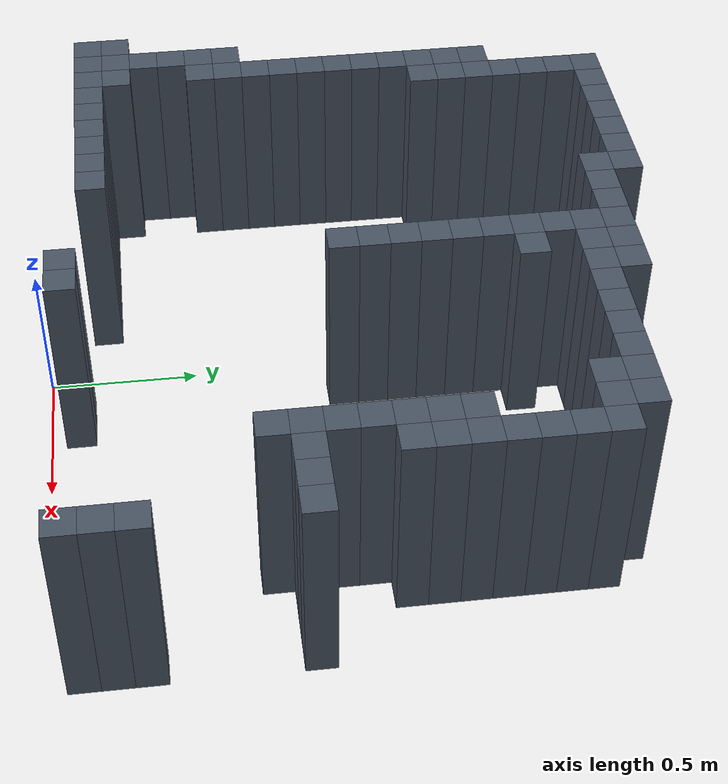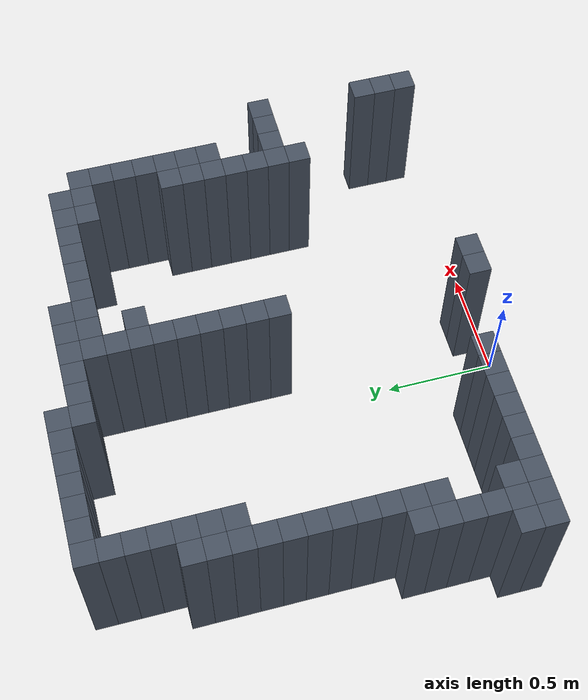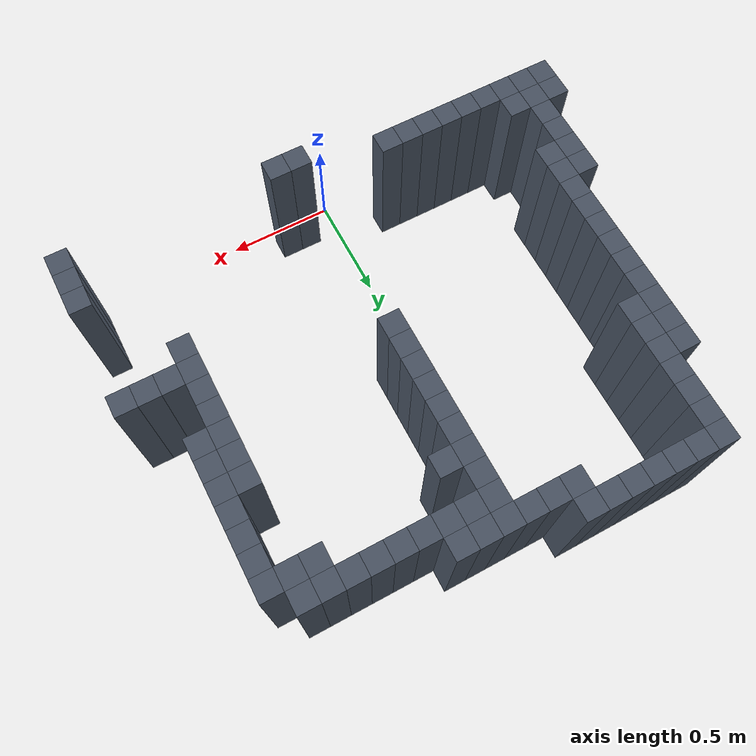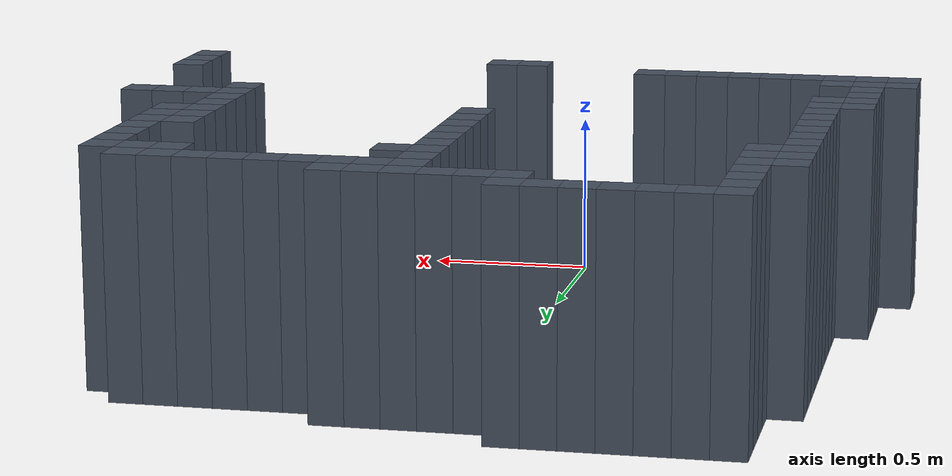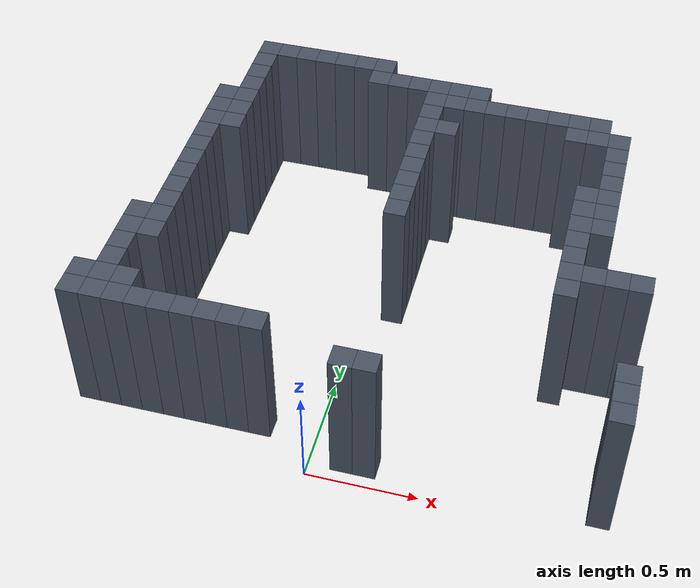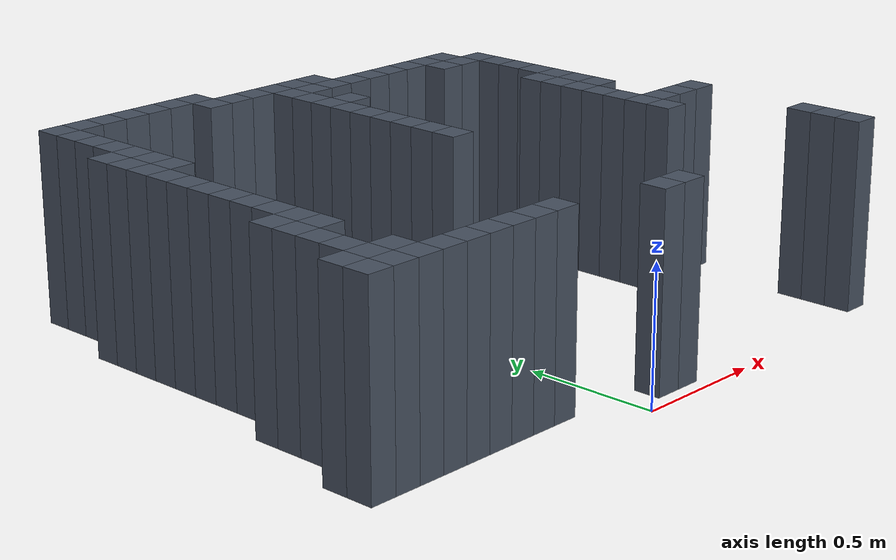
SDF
<sdf version="1.8">
 <world name="parking_passage">
  <model name="map_walls">
   <static>true</static>
   <link name="wall_0_5">
    <pose>-0.750 2.000 0.350 0 0 0</pose>
    <visual name="visual">
     <geometry><box><size>0.1 0.1 0.70</size></box></geometry>
     <material><ambient>0.22 0.25 0.30 1</ambient><diffuse>0.28 0.32 0.38 1</diffuse></material>
    </visual>
    <collision name="collision"><geometry><box><size>0.1 0.1 0.70</size></box></geometry></collision>
   </link>
   <link name="wall_0_6">
    <pose>-0.650 2.000 0.350 0 0 0</pose>
    <visual name="visual">
     <geometry><box><size>0.1 0.1 0.70</size></box></geometry>
     <material><ambient>0.22 0.25 0.30 1</ambient><diffuse>0.28 0.32 0.38 1</diffuse></material>
    </visual>
    <collision name="collision"><geometry><box><size>0.1 0.1 0.70</size></box></geometry></collision>
   </link>
   <link name="wall_0_7">
    <pose>-0.550 2.000 0.350 0 0 0</pose>
    <visual name="visual">
     <geometry><box><size>0.1 0.1 0.70</size></box></geometry>
     <material><ambient>0.22 0.25 0.30 1</ambient><diffuse>0.28 0.32 0.38 1</diffuse></material>
    </visual>
    <collision name="collision"><geometry><box><size>0.1 0.1 0.70</size></box></geometry></collision>
   </link>
   <link name="wall_0_8">
    <pose>-0.450 2.000 0.350 0 0 0</pose>
    <visual name="visual">
     <geometry><box><size>0.1 0.1 0.70</size></box></geometry>
     <material><ambient>0.22 0.25 0.30 1</ambient><diffuse>0.28 0.32 0.38 1</diffuse></material>
    </visual>
    <collision name="collision"><geometry><box><size>0.1 0.1 0.70</size></box></geometry></collision>
   </link>
   <link name="wall_0_9">
    <pose>-0.350 2.000 0.350 0 0 0</pose>
    <visual name="visual">
     <geometry><box><size>0.1 0.1 0.70</size></box></geometry>
     <material><ambient>0.22 0.25 0.30 1</ambient><diffuse>0.28 0.32 0.38 1</diffuse></material>
    </visual>
    <collision name="collision"><geometry><box><size>0.1 0.1 0.70</size></box></geometry></collision>
   </link>
   <link name="wall_0_10">
    <pose>-0.250 2.000 0.350 0 0 0</pose>
    <visual name="visual">
     <geometry><box><size>0.1 0.1 0.70</size></box></geometry>
     <material><ambient>0.22 0.25 0.30 1</ambient><diffuse>0.28 0.32 0.38 1</diffuse></material>
    </visual>
    <collision name="collision"><geometry><box><size>0.1 0.1 0.70</size></box></geometry></collision>
   </link>
   <link name="wall_0_11">
    <pose>-0.150 2.000 0.350 0 0 0</pose>
    <visual name="visual">
     <geometry><box><size>0.1 0.1 0.70</size></box></geometry>
     <material><ambient>0.22 0.25 0.30 1</ambient><diffuse>0.28 0.32 0.38 1</diffuse></material>
    </visual>
    <collision name="collision"><geometry><box><size>0.1 0.1 0.70</size></box></geometry></collision>
   </link>
   <link name="wall_1_5">
    <pose>-0.750 1.900 0.350 0 0 0</pose>
    <visual name="visual">
     <geometry><box><size>0.1 0.1 0.70</size></box></geometry>
     <material><ambient>0.22 0.25 0.30 1</ambient><diffuse>0.28 0.32 0.38 1</diffuse></material>
    </visual>
    <collision name="collision"><geometry><box><size>0.1 0.1 0.70</size></box></geometry></collision>
   </link>
   <link name="wall_1_11">
    <pose>-0.150 1.900 0.350 0 0 0</pose>
    <visual name="visual">
     <geometry><box><size>0.1 0.1 0.70</size></box></geometry>
     <material><ambient>0.22 0.25 0.30 1</ambient><diffuse>0.28 0.32 0.38 1</diffuse></material>
    </visual>
    <collision name="collision"><geometry><box><size>0.1 0.1 0.70</size></box></geometry></collision>
   </link>
   <link name="wall_1_12">
    <pose>-0.050 1.900 0.350 0 0 0</pose>
    <visual name="visual">
     <geometry><box><size>0.1 0.1 0.70</size></box></geometry>
     <material><ambient>0.22 0.25 0.30 1</ambient><diffuse>0.28 0.32 0.38 1</diffuse></material>
    </visual>
    <collision name="collision"><geometry><box><size>0.1 0.1 0.70</size></box></geometry></collision>
   </link>
   <link name="wall_1_13">
    <pose>0.050 1.900 0.350 0 0 0</pose>
    <visual name="visual">
     <geometry><box><size>0.1 0.1 0.70</size></box></geometry>
     <material><ambient>0.22 0.25 0.30 1</ambient><diffuse>0.28 0.32 0.38 1</diffuse></material>
    </visual>
    <collision name="collision"><geometry><box><size>0.1 0.1 0.70</size></box></geometry></collision>
   </link>
   <link name="wall_1_14">
    <pose>0.150 1.900 0.350 0 0 0</pose>
    <visual name="visual">
     <geometry><box><size>0.1 0.1 0.70</size></box></geometry>
     <material><ambient>0.22 0.25 0.30 1</ambient><diffuse>0.28 0.32 0.38 1</diffuse></material>
    </visual>
    <collision name="collision"><geometry><box><size>0.1 0.1 0.70</size></box></geometry></collision>
   </link>
   <link name="wall_1_15">
    <pose>0.250 1.900 0.350 0 0 0</pose>
    <visual name="visual">
     <geometry><box><size>0.1 0.1 0.70</size></box></geometry>
     <material><ambient>0.22 0.25 0.30 1</ambient><diffuse>0.28 0.32 0.38 1</diffuse></material>
    </visual>
    <collision name="collision"><geometry><box><size>0.1 0.1 0.70</size></box></geometry></collision>
   </link>
   <link name="wall_1_16">
    <pose>0.350 1.900 0.350 0 0 0</pose>
    <visual name="visual">
     <geometry><box><size>0.1 0.1 0.70</size></box></geometry>
     <material><ambient>0.22 0.25 0.30 1</ambient><diffuse>0.28 0.32 0.38 1</diffuse></material>
    </visual>
    <collision name="collision"><geometry><box><size>0.1 0.1 0.70</size></box></geometry></collision>
   </link>
   <link name="wall_2_5">
    <pose>-0.750 1.800 0.350 0 0 0</pose>
    <visual name="visual">
     <geometry><box><size>0.1 0.1 0.70</size></box></geometry>
     <material><ambient>0.22 0.25 0.30 1</ambient><diffuse>0.28 0.32 0.38 1</diffuse></material>
    </visual>
    <collision name="collision"><geometry><box><size>0.1 0.1 0.70</size></box></geometry></collision>
   </link>
   <link name="wall_2_14">
    <pose>0.150 1.800 0.350 0 0 0</pose>
    <visual name="visual">
     <geometry><box><size>0.1 0.1 0.70</size></box></geometry>
     <material><ambient>0.22 0.25 0.30 1</ambient><diffuse>0.28 0.32 0.38 1</diffuse></material>
    </visual>
    <collision name="collision"><geometry><box><size>0.1 0.1 0.70</size></box></geometry></collision>
   </link>
   <link name="wall_2_15">
    <pose>0.250 1.800 0.350 0 0 0</pose>
    <visual name="visual">
     <geometry><box><size>0.1 0.1 0.70</size></box></geometry>
     <material><ambient>0.22 0.25 0.30 1</ambient><diffuse>0.28 0.32 0.38 1</diffuse></material>
    </visual>
    <collision name="collision"><geometry><box><size>0.1 0.1 0.70</size></box></geometry></collision>
   </link>
   <link name="wall_2_16">
    <pose>0.350 1.800 0.350 0 0 0</pose>
    <visual name="visual">
     <geometry><box><size>0.1 0.1 0.70</size></box></geometry>
     <material><ambient>0.22 0.25 0.30 1</ambient><diffuse>0.28 0.32 0.38 1</diffuse></material>
    </visual>
    <collision name="collision"><geometry><box><size>0.1 0.1 0.70</size></box></geometry></collision>
   </link>
   <link name="wall_2_17">
    <pose>0.450 1.800 0.350 0 0 0</pose>
    <visual name="visual">
     <geometry><box><size>0.1 0.1 0.70</size></box></geometry>
     <material><ambient>0.22 0.25 0.30 1</ambient><diffuse>0.28 0.32 0.38 1</diffuse></material>
    </visual>
    <collision name="collision"><geometry><box><size>0.1 0.1 0.70</size></box></geometry></collision>
   </link>
   <link name="wall_2_18">
    <pose>0.550 1.800 0.350 0 0 0</pose>
    <visual name="visual">
     <geometry><box><size>0.1 0.1 0.70</size></box></geometry>
     <material><ambient>0.22 0.25 0.30 1</ambient><diffuse>0.28 0.32 0.38 1</diffuse></material>
    </visual>
    <collision name="collision"><geometry><box><size>0.1 0.1 0.70</size></box></geometry></collision>
   </link>
   <link name="wall_2_19">
    <pose>0.650 1.800 0.350 0 0 0</pose>
    <visual name="visual">
     <geometry><box><size>0.1 0.1 0.70</size></box></geometry>
     <material><ambient>0.22 0.25 0.30 1</ambient><diffuse>0.28 0.32 0.38 1</diffuse></material>
    </visual>
    <collision name="collision"><geometry><box><size>0.1 0.1 0.70</size></box></geometry></collision>
   </link>
   <link name="wall_2_20">
    <pose>0.750 1.800 0.350 0 0 0</pose>
    <visual name="visual">
     <geometry><box><size>0.1 0.1 0.70</size></box></geometry>
     <material><ambient>0.22 0.25 0.30 1</ambient><diffuse>0.28 0.32 0.38 1</diffuse></material>
    </visual>
    <collision name="collision"><geometry><box><size>0.1 0.1 0.70</size></box></geometry></collision>
   </link>
   <link name="wall_2_21">
    <pose>0.850 1.800 0.350 0 0 0</pose>
    <visual name="visual">
     <geometry><box><size>0.1 0.1 0.70</size></box></geometry>
     <material><ambient>0.22 0.25 0.30 1</ambient><diffuse>0.28 0.32 0.38 1</diffuse></material>
    </visual>
    <collision name="collision"><geometry><box><size>0.1 0.1 0.70</size></box></geometry></collision>
   </link>
   <link name="wall_2_22">
    <pose>0.950 1.800 0.350 0 0 0</pose>
    <visual name="visual">
     <geometry><box><size>0.1 0.1 0.70</size></box></geometry>
     <material><ambient>0.22 0.25 0.30 1</ambient><diffuse>0.28 0.32 0.38 1</diffuse></material>
    </visual>
    <collision name="collision"><geometry><box><size>0.1 0.1 0.70</size></box></geometry></collision>
   </link>
   <link name="wall_3_5">
    <pose>-0.750 1.700 0.350 0 0 0</pose>
    <visual name="visual">
     <geometry><box><size>0.1 0.1 0.70</size></box></geometry>
     <material><ambient>0.22 0.25 0.30 1</ambient><diffuse>0.28 0.32 0.38 1</diffuse></material>
    </visual>
    <collision name="collision"><geometry><box><size>0.1 0.1 0.70</size></box></geometry></collision>
   </link>
   <link name="wall_3_14">
    <pose>0.150 1.700 0.350 0 0 0</pose>
    <visual name="visual">
     <geometry><box><size>0.1 0.1 0.70</size></box></geometry>
     <material><ambient>0.22 0.25 0.30 1</ambient><diffuse>0.28 0.32 0.38 1</diffuse></material>
    </visual>
    <collision name="collision"><geometry><box><size>0.1 0.1 0.70</size></box></geometry></collision>
   </link>
   <link name="wall_3_21">
    <pose>0.850 1.700 0.350 0 0 0</pose>
    <visual name="visual">
     <geometry><box><size>0.1 0.1 0.70</size></box></geometry>
     <material><ambient>0.22 0.25 0.30 1</ambient><diffuse>0.28 0.32 0.38 1</diffuse></material>
    </visual>
    <collision name="collision"><geometry><box><size>0.1 0.1 0.70</size></box></geometry></collision>
   </link>
   <link name="wall_3_22">
    <pose>0.950 1.700 0.350 0 0 0</pose>
    <visual name="visual">
     <geometry><box><size>0.1 0.1 0.70</size></box></geometry>
     <material><ambient>0.22 0.25 0.30 1</ambient><diffuse>0.28 0.32 0.38 1</diffuse></material>
    </visual>
    <collision name="collision"><geometry><box><size>0.1 0.1 0.70</size></box></geometry></collision>
   </link>
   <link name="wall_3_23">
    <pose>1.050 1.700 0.350 0 0 0</pose>
    <visual name="visual">
     <geometry><box><size>0.1 0.1 0.70</size></box></geometry>
     <material><ambient>0.22 0.25 0.30 1</ambient><diffuse>0.28 0.32 0.38 1</diffuse></material>
    </visual>
    <collision name="collision"><geometry><box><size>0.1 0.1 0.70</size></box></geometry></collision>
   </link>
   <link name="wall_4_4">
    <pose>-0.850 1.600 0.350 0 0 0</pose>
    <visual name="visual">
     <geometry><box><size>0.1 0.1 0.70</size></box></geometry>
     <material><ambient>0.22 0.25 0.30 1</ambient><diffuse>0.28 0.32 0.38 1</diffuse></material>
    </visual>
    <collision name="collision"><geometry><box><size>0.1 0.1 0.70</size></box></geometry></collision>
   </link>
   <link name="wall_4_5">
    <pose>-0.750 1.600 0.350 0 0 0</pose>
    <visual name="visual">
     <geometry><box><size>0.1 0.1 0.70</size></box></geometry>
     <material><ambient>0.22 0.25 0.30 1</ambient><diffuse>0.28 0.32 0.38 1</diffuse></material>
    </visual>
    <collision name="collision"><geometry><box><size>0.1 0.1 0.70</size></box></geometry></collision>
   </link>
   <link name="wall_4_14">
    <pose>0.150 1.600 0.350 0 0 0</pose>
    <visual name="visual">
     <geometry><box><size>0.1 0.1 0.70</size></box></geometry>
     <material><ambient>0.22 0.25 0.30 1</ambient><diffuse>0.28 0.32 0.38 1</diffuse></material>
    </visual>
    <collision name="collision"><geometry><box><size>0.1 0.1 0.70</size></box></geometry></collision>
   </link>
   <link name="wall_4_15">
    <pose>0.250 1.600 0.350 0 0 0</pose>
    <visual name="visual">
     <geometry><box><size>0.1 0.1 0.70</size></box></geometry>
     <material><ambient>0.22 0.25 0.30 1</ambient><diffuse>0.28 0.32 0.38 1</diffuse></material>
    </visual>
    <collision name="collision"><geometry><box><size>0.1 0.1 0.70</size></box></geometry></collision>
   </link>
   <link name="wall_4_23">
    <pose>1.050 1.600 0.350 0 0 0</pose>
    <visual name="visual">
     <geometry><box><size>0.1 0.1 0.70</size></box></geometry>
     <material><ambient>0.22 0.25 0.30 1</ambient><diffuse>0.28 0.32 0.38 1</diffuse></material>
    </visual>
    <collision name="collision"><geometry><box><size>0.1 0.1 0.70</size></box></geometry></collision>
   </link>
   <link name="wall_5_4">
    <pose>-0.850 1.500 0.350 0 0 0</pose>
    <visual name="visual">
     <geometry><box><size>0.1 0.1 0.70</size></box></geometry>
     <material><ambient>0.22 0.25 0.30 1</ambient><diffuse>0.28 0.32 0.38 1</diffuse></material>
    </visual>
    <collision name="collision"><geometry><box><size>0.1 0.1 0.70</size></box></geometry></collision>
   </link>
   <link name="wall_5_5">
    <pose>-0.750 1.500 0.350 0 0 0</pose>
    <visual name="visual">
     <geometry><box><size>0.1 0.1 0.70</size></box></geometry>
     <material><ambient>0.22 0.25 0.30 1</ambient><diffuse>0.28 0.32 0.38 1</diffuse></material>
    </visual>
    <collision name="collision"><geometry><box><size>0.1 0.1 0.70</size></box></geometry></collision>
   </link>
   <link name="wall_5_14">
    <pose>0.150 1.500 0.350 0 0 0</pose>
    <visual name="visual">
     <geometry><box><size>0.1 0.1 0.70</size></box></geometry>
     <material><ambient>0.22 0.25 0.30 1</ambient><diffuse>0.28 0.32 0.38 1</diffuse></material>
    </visual>
    <collision name="collision"><geometry><box><size>0.1 0.1 0.70</size></box></geometry></collision>
   </link>
   <link name="wall_5_23">
    <pose>1.050 1.500 0.350 0 0 0</pose>
    <visual name="visual">
     <geometry><box><size>0.1 0.1 0.70</size></box></geometry>
     <material><ambient>0.22 0.25 0.30 1</ambient><diffuse>0.28 0.32 0.38 1</diffuse></material>
    </visual>
    <collision name="collision"><geometry><box><size>0.1 0.1 0.70</size></box></geometry></collision>
   </link>
   <link name="wall_6_4">
    <pose>-0.850 1.400 0.350 0 0 0</pose>
    <visual name="visual">
     <geometry><box><size>0.1 0.1 0.70</size></box></geometry>
     <material><ambient>0.22 0.25 0.30 1</ambient><diffuse>0.28 0.32 0.38 1</diffuse></material>
    </visual>
    <collision name="collision"><geometry><box><size>0.1 0.1 0.70</size></box></geometry></collision>
   </link>
   <link name="wall_6_5">
    <pose>-0.750 1.400 0.350 0 0 0</pose>
    <visual name="visual">
     <geometry><box><size>0.1 0.1 0.70</size></box></geometry>
     <material><ambient>0.22 0.25 0.30 1</ambient><diffuse>0.28 0.32 0.38 1</diffuse></material>
    </visual>
    <collision name="collision"><geometry><box><size>0.1 0.1 0.70</size></box></geometry></collision>
   </link>
   <link name="wall_6_14">
    <pose>0.150 1.400 0.350 0 0 0</pose>
    <visual name="visual">
     <geometry><box><size>0.1 0.1 0.70</size></box></geometry>
     <material><ambient>0.22 0.25 0.30 1</ambient><diffuse>0.28 0.32 0.38 1</diffuse></material>
    </visual>
    <collision name="collision"><geometry><box><size>0.1 0.1 0.70</size></box></geometry></collision>
   </link>
   <link name="wall_6_23">
    <pose>1.050 1.400 0.350 0 0 0</pose>
    <visual name="visual">
     <geometry><box><size>0.1 0.1 0.70</size></box></geometry>
     <material><ambient>0.22 0.25 0.30 1</ambient><diffuse>0.28 0.32 0.38 1</diffuse></material>
    </visual>
    <collision name="collision"><geometry><box><size>0.1 0.1 0.70</size></box></geometry></collision>
   </link>
   <link name="wall_7_4">
    <pose>-0.850 1.300 0.350 0 0 0</pose>
    <visual name="visual">
     <geometry><box><size>0.1 0.1 0.70</size></box></geometry>
     <material><ambient>0.22 0.25 0.30 1</ambient><diffuse>0.28 0.32 0.38 1</diffuse></material>
    </visual>
    <collision name="collision"><geometry><box><size>0.1 0.1 0.70</size></box></geometry></collision>
   </link>
   <link name="wall_7_14">
    <pose>0.150 1.300 0.350 0 0 0</pose>
    <visual name="visual">
     <geometry><box><size>0.1 0.1 0.70</size></box></geometry>
     <material><ambient>0.22 0.25 0.30 1</ambient><diffuse>0.28 0.32 0.38 1</diffuse></material>
    </visual>
    <collision name="collision"><geometry><box><size>0.1 0.1 0.70</size></box></geometry></collision>
   </link>
   <link name="wall_7_22">
    <pose>0.950 1.300 0.350 0 0 0</pose>
    <visual name="visual">
     <geometry><box><size>0.1 0.1 0.70</size></box></geometry>
     <material><ambient>0.22 0.25 0.30 1</ambient><diffuse>0.28 0.32 0.38 1</diffuse></material>
    </visual>
    <collision name="collision"><geometry><box><size>0.1 0.1 0.70</size></box></geometry></collision>
   </link>
   <link name="wall_7_23">
    <pose>1.050 1.300 0.350 0 0 0</pose>
    <visual name="visual">
     <geometry><box><size>0.1 0.1 0.70</size></box></geometry>
     <material><ambient>0.22 0.25 0.30 1</ambient><diffuse>0.28 0.32 0.38 1</diffuse></material>
    </visual>
    <collision name="collision"><geometry><box><size>0.1 0.1 0.70</size></box></geometry></collision>
   </link>
   <link name="wall_8_4">
    <pose>-0.850 1.200 0.350 0 0 0</pose>
    <visual name="visual">
     <geometry><box><size>0.1 0.1 0.70</size></box></geometry>
     <material><ambient>0.22 0.25 0.30 1</ambient><diffuse>0.28 0.32 0.38 1</diffuse></material>
    </visual>
    <collision name="collision"><geometry><box><size>0.1 0.1 0.70</size></box></geometry></collision>
   </link>
   <link name="wall_8_14">
    <pose>0.150 1.200 0.350 0 0 0</pose>
    <visual name="visual">
     <geometry><box><size>0.1 0.1 0.70</size></box></geometry>
     <material><ambient>0.22 0.25 0.30 1</ambient><diffuse>0.28 0.32 0.38 1</diffuse></material>
    </visual>
    <collision name="collision"><geometry><box><size>0.1 0.1 0.70</size></box></geometry></collision>
   </link>
   <link name="wall_8_22">
    <pose>0.950 1.200 0.350 0 0 0</pose>
    <visual name="visual">
     <geometry><box><size>0.1 0.1 0.70</size></box></geometry>
     <material><ambient>0.22 0.25 0.30 1</ambient><diffuse>0.28 0.32 0.38 1</diffuse></material>
    </visual>
    <collision name="collision"><geometry><box><size>0.1 0.1 0.70</size></box></geometry></collision>
   </link>
   <link name="wall_8_23">
    <pose>1.050 1.200 0.350 0 0 0</pose>
    <visual name="visual">
     <geometry><box><size>0.1 0.1 0.70</size></box></geometry>
     <material><ambient>0.22 0.25 0.30 1</ambient><diffuse>0.28 0.32 0.38 1</diffuse></material>
    </visual>
    <collision name="collision"><geometry><box><size>0.1 0.1 0.70</size></box></geometry></collision>
   </link>
   <link name="wall_9_4">
    <pose>-0.850 1.100 0.350 0 0 0</pose>
    <visual name="visual">
     <geometry><box><size>0.1 0.1 0.70</size></box></geometry>
     <material><ambient>0.22 0.25 0.30 1</ambient><diffuse>0.28 0.32 0.38 1</diffuse></material>
    </visual>
    <collision name="collision"><geometry><box><size>0.1 0.1 0.70</size></box></geometry></collision>
   </link>
   <link name="wall_9_14">
    <pose>0.150 1.100 0.350 0 0 0</pose>
    <visual name="visual">
     <geometry><box><size>0.1 0.1 0.70</size></box></geometry>
     <material><ambient>0.22 0.25 0.30 1</ambient><diffuse>0.28 0.32 0.38 1</diffuse></material>
    </visual>
    <collision name="collision"><geometry><box><size>0.1 0.1 0.70</size></box></geometry></collision>
   </link>
   <link name="wall_9_22">
    <pose>0.950 1.100 0.350 0 0 0</pose>
    <visual name="visual">
     <geometry><box><size>0.1 0.1 0.70</size></box></geometry>
     <material><ambient>0.22 0.25 0.30 1</ambient><diffuse>0.28 0.32 0.38 1</diffuse></material>
    </visual>
    <collision name="collision"><geometry><box><size>0.1 0.1 0.70</size></box></geometry></collision>
   </link>
   <link name="wall_9_23">
    <pose>1.050 1.100 0.350 0 0 0</pose>
    <visual name="visual">
     <geometry><box><size>0.1 0.1 0.70</size></box></geometry>
     <material><ambient>0.22 0.25 0.30 1</ambient><diffuse>0.28 0.32 0.38 1</diffuse></material>
    </visual>
    <collision name="collision"><geometry><box><size>0.1 0.1 0.70</size></box></geometry></collision>
   </link>
   <link name="wall_10_4">
    <pose>-0.850 1.000 0.350 0 0 0</pose>
    <visual name="visual">
     <geometry><box><size>0.1 0.1 0.70</size></box></geometry>
     <material><ambient>0.22 0.25 0.30 1</ambient><diffuse>0.28 0.32 0.38 1</diffuse></material>
    </visual>
    <collision name="collision"><geometry><box><size>0.1 0.1 0.70</size></box></geometry></collision>
   </link>
   <link name="wall_10_14">
    <pose>0.150 1.000 0.350 0 0 0</pose>
    <visual name="visual">
     <geometry><box><size>0.1 0.1 0.70</size></box></geometry>
     <material><ambient>0.22 0.25 0.30 1</ambient><diffuse>0.28 0.32 0.38 1</diffuse></material>
    </visual>
    <collision name="collision"><geometry><box><size>0.1 0.1 0.70</size></box></geometry></collision>
   </link>
   <link name="wall_10_22">
    <pose>0.950 1.000 0.350 0 0 0</pose>
    <visual name="visual">
     <geometry><box><size>0.1 0.1 0.70</size></box></geometry>
     <material><ambient>0.22 0.25 0.30 1</ambient><diffuse>0.28 0.32 0.38 1</diffuse></material>
    </visual>
    <collision name="collision"><geometry><box><size>0.1 0.1 0.70</size></box></geometry></collision>
   </link>
   <link name="wall_11_4">
    <pose>-0.850 0.900 0.350 0 0 0</pose>
    <visual name="visual">
     <geometry><box><size>0.1 0.1 0.70</size></box></geometry>
     <material><ambient>0.22 0.25 0.30 1</ambient><diffuse>0.28 0.32 0.38 1</diffuse></material>
    </visual>
    <collision name="collision"><geometry><box><size>0.1 0.1 0.70</size></box></geometry></collision>
   </link>
   <link name="wall_11_22">
    <pose>0.950 0.900 0.350 0 0 0</pose>
    <visual name="visual">
     <geometry><box><size>0.1 0.1 0.70</size></box></geometry>
     <material><ambient>0.22 0.25 0.30 1</ambient><diffuse>0.28 0.32 0.38 1</diffuse></material>
    </visual>
    <collision name="collision"><geometry><box><size>0.1 0.1 0.70</size></box></geometry></collision>
   </link>
   <link name="wall_12_4">
    <pose>-0.850 0.800 0.350 0 0 0</pose>
    <visual name="visual">
     <geometry><box><size>0.1 0.1 0.70</size></box></geometry>
     <material><ambient>0.22 0.25 0.30 1</ambient><diffuse>0.28 0.32 0.38 1</diffuse></material>
    </visual>
    <collision name="collision"><geometry><box><size>0.1 0.1 0.70</size></box></geometry></collision>
   </link>
   <link name="wall_12_22">
    <pose>0.950 0.800 0.350 0 0 0</pose>
    <visual name="visual">
     <geometry><box><size>0.1 0.1 0.70</size></box></geometry>
     <material><ambient>0.22 0.25 0.30 1</ambient><diffuse>0.28 0.32 0.38 1</diffuse></material>
    </visual>
    <collision name="collision"><geometry><box><size>0.1 0.1 0.70</size></box></geometry></collision>
   </link>
   <link name="wall_12_23">
    <pose>1.050 0.800 0.350 0 0 0</pose>
    <visual name="visual">
     <geometry><box><size>0.1 0.1 0.70</size></box></geometry>
     <material><ambient>0.22 0.25 0.30 1</ambient><diffuse>0.28 0.32 0.38 1</diffuse></material>
    </visual>
    <collision name="collision"><geometry><box><size>0.1 0.1 0.70</size></box></geometry></collision>
   </link>
   <link name="wall_12_24">
    <pose>1.150 0.800 0.350 0 0 0</pose>
    <visual name="visual">
     <geometry><box><size>0.1 0.1 0.70</size></box></geometry>
     <material><ambient>0.22 0.25 0.30 1</ambient><diffuse>0.28 0.32 0.38 1</diffuse></material>
    </visual>
    <collision name="collision"><geometry><box><size>0.1 0.1 0.70</size></box></geometry></collision>
   </link>
   <link name="wall_12_25">
    <pose>1.250 0.800 0.350 0 0 0</pose>
    <visual name="visual">
     <geometry><box><size>0.1 0.1 0.70</size></box></geometry>
     <material><ambient>0.22 0.25 0.30 1</ambient><diffuse>0.28 0.32 0.38 1</diffuse></material>
    </visual>
    <collision name="collision"><geometry><box><size>0.1 0.1 0.70</size></box></geometry></collision>
   </link>
   <link name="wall_13_3">
    <pose>-0.950 0.700 0.350 0 0 0</pose>
    <visual name="visual">
     <geometry><box><size>0.1 0.1 0.70</size></box></geometry>
     <material><ambient>0.22 0.25 0.30 1</ambient><diffuse>0.28 0.32 0.38 1</diffuse></material>
    </visual>
    <collision name="collision"><geometry><box><size>0.1 0.1 0.70</size></box></geometry></collision>
   </link>
   <link name="wall_13_4">
    <pose>-0.850 0.700 0.350 0 0 0</pose>
    <visual name="visual">
     <geometry><box><size>0.1 0.1 0.70</size></box></geometry>
     <material><ambient>0.22 0.25 0.30 1</ambient><diffuse>0.28 0.32 0.38 1</diffuse></material>
    </visual>
    <collision name="collision"><geometry><box><size>0.1 0.1 0.70</size></box></geometry></collision>
   </link>
   <link name="wall_13_22">
    <pose>0.950 0.700 0.350 0 0 0</pose>
    <visual name="visual">
     <geometry><box><size>0.1 0.1 0.70</size></box></geometry>
     <material><ambient>0.22 0.25 0.30 1</ambient><diffuse>0.28 0.32 0.38 1</diffuse></material>
    </visual>
    <collision name="collision"><geometry><box><size>0.1 0.1 0.70</size></box></geometry></collision>
   </link>
   <link name="wall_14_3">
    <pose>-0.950 0.600 0.350 0 0 0</pose>
    <visual name="visual">
     <geometry><box><size>0.1 0.1 0.70</size></box></geometry>
     <material><ambient>0.22 0.25 0.30 1</ambient><diffuse>0.28 0.32 0.38 1</diffuse></material>
    </visual>
    <collision name="collision"><geometry><box><size>0.1 0.1 0.70</size></box></geometry></collision>
   </link>
   <link name="wall_14_4">
    <pose>-0.850 0.600 0.350 0 0 0</pose>
    <visual name="visual">
     <geometry><box><size>0.1 0.1 0.70</size></box></geometry>
     <material><ambient>0.22 0.25 0.30 1</ambient><diffuse>0.28 0.32 0.38 1</diffuse></material>
    </visual>
    <collision name="collision"><geometry><box><size>0.1 0.1 0.70</size></box></geometry></collision>
   </link>
   <link name="wall_15_3">
    <pose>-0.950 0.500 0.350 0 0 0</pose>
    <visual name="visual">
     <geometry><box><size>0.1 0.1 0.70</size></box></geometry>
     <material><ambient>0.22 0.25 0.30 1</ambient><diffuse>0.28 0.32 0.38 1</diffuse></material>
    </visual>
    <collision name="collision"><geometry><box><size>0.1 0.1 0.70</size></box></geometry></collision>
   </link>
   <link name="wall_16_3">
    <pose>-0.950 0.400 0.350 0 0 0</pose>
    <visual name="visual">
     <geometry><box><size>0.1 0.1 0.70</size></box></geometry>
     <material><ambient>0.22 0.25 0.30 1</ambient><diffuse>0.28 0.32 0.38 1</diffuse></material>
    </visual>
    <collision name="collision"><geometry><box><size>0.1 0.1 0.70</size></box></geometry></collision>
   </link>
   <link name="wall_17_2">
    <pose>-1.050 0.300 0.350 0 0 0</pose>
    <visual name="visual">
     <geometry><box><size>0.1 0.1 0.70</size></box></geometry>
     <material><ambient>0.22 0.25 0.30 1</ambient><diffuse>0.28 0.32 0.38 1</diffuse></material>
    </visual>
    <collision name="collision"><geometry><box><size>0.1 0.1 0.70</size></box></geometry></collision>
   </link>
   <link name="wall_17_3">
    <pose>-0.950 0.300 0.350 0 0 0</pose>
    <visual name="visual">
     <geometry><box><size>0.1 0.1 0.70</size></box></geometry>
     <material><ambient>0.22 0.25 0.30 1</ambient><diffuse>0.28 0.32 0.38 1</diffuse></material>
    </visual>
    <collision name="collision"><geometry><box><size>0.1 0.1 0.70</size></box></geometry></collision>
   </link>
   <link name="wall_17_4">
    <pose>-0.850 0.300 0.350 0 0 0</pose>
    <visual name="visual">
     <geometry><box><size>0.1 0.1 0.70</size></box></geometry>
     <material><ambient>0.22 0.25 0.30 1</ambient><diffuse>0.28 0.32 0.38 1</diffuse></material>
    </visual>
    <collision name="collision"><geometry><box><size>0.1 0.1 0.70</size></box></geometry></collision>
   </link>
   <link name="wall_17_25">
    <pose>1.250 0.300 0.350 0 0 0</pose>
    <visual name="visual">
     <geometry><box><size>0.1 0.1 0.70</size></box></geometry>
     <material><ambient>0.22 0.25 0.30 1</ambient><diffuse>0.28 0.32 0.38 1</diffuse></material>
    </visual>
    <collision name="collision"><geometry><box><size>0.1 0.1 0.70</size></box></geometry></collision>
   </link>
   <link name="wall_18_2">
    <pose>-1.050 0.200 0.350 0 0 0</pose>
    <visual name="visual">
     <geometry><box><size>0.1 0.1 0.70</size></box></geometry>
     <material><ambient>0.22 0.25 0.30 1</ambient><diffuse>0.28 0.32 0.38 1</diffuse></material>
    </visual>
    <collision name="collision"><geometry><box><size>0.1 0.1 0.70</size></box></geometry></collision>
   </link>
   <link name="wall_18_3">
    <pose>-0.950 0.200 0.350 0 0 0</pose>
    <visual name="visual">
     <geometry><box><size>0.1 0.1 0.70</size></box></geometry>
     <material><ambient>0.22 0.25 0.30 1</ambient><diffuse>0.28 0.32 0.38 1</diffuse></material>
    </visual>
    <collision name="collision"><geometry><box><size>0.1 0.1 0.70</size></box></geometry></collision>
   </link>
   <link name="wall_18_4">
    <pose>-0.850 0.200 0.350 0 0 0</pose>
    <visual name="visual">
     <geometry><box><size>0.1 0.1 0.70</size></box></geometry>
     <material><ambient>0.22 0.25 0.30 1</ambient><diffuse>0.28 0.32 0.38 1</diffuse></material>
    </visual>
    <collision name="collision"><geometry><box><size>0.1 0.1 0.70</size></box></geometry></collision>
   </link>
   <link name="wall_18_5">
    <pose>-0.750 0.200 0.350 0 0 0</pose>
    <visual name="visual">
     <geometry><box><size>0.1 0.1 0.70</size></box></geometry>
     <material><ambient>0.22 0.25 0.30 1</ambient><diffuse>0.28 0.32 0.38 1</diffuse></material>
    </visual>
    <collision name="collision"><geometry><box><size>0.1 0.1 0.70</size></box></geometry></collision>
   </link>
   <link name="wall_18_6">
    <pose>-0.650 0.200 0.350 0 0 0</pose>
    <visual name="visual">
     <geometry><box><size>0.1 0.1 0.70</size></box></geometry>
     <material><ambient>0.22 0.25 0.30 1</ambient><diffuse>0.28 0.32 0.38 1</diffuse></material>
    </visual>
    <collision name="collision"><geometry><box><size>0.1 0.1 0.70</size></box></geometry></collision>
   </link>
   <link name="wall_18_7">
    <pose>-0.550 0.200 0.350 0 0 0</pose>
    <visual name="visual">
     <geometry><box><size>0.1 0.1 0.70</size></box></geometry>
     <material><ambient>0.22 0.25 0.30 1</ambient><diffuse>0.28 0.32 0.38 1</diffuse></material>
    </visual>
    <collision name="collision"><geometry><box><size>0.1 0.1 0.70</size></box></geometry></collision>
   </link>
   <link name="wall_18_8">
    <pose>-0.450 0.200 0.350 0 0 0</pose>
    <visual name="visual">
     <geometry><box><size>0.1 0.1 0.70</size></box></geometry>
     <material><ambient>0.22 0.25 0.30 1</ambient><diffuse>0.28 0.32 0.38 1</diffuse></material>
    </visual>
    <collision name="collision"><geometry><box><size>0.1 0.1 0.70</size></box></geometry></collision>
   </link>
   <link name="wall_18_9">
    <pose>-0.350 0.200 0.350 0 0 0</pose>
    <visual name="visual">
     <geometry><box><size>0.1 0.1 0.70</size></box></geometry>
     <material><ambient>0.22 0.25 0.30 1</ambient><diffuse>0.28 0.32 0.38 1</diffuse></material>
    </visual>
    <collision name="collision"><geometry><box><size>0.1 0.1 0.70</size></box></geometry></collision>
   </link>
   <link name="wall_18_10">
    <pose>-0.250 0.200 0.350 0 0 0</pose>
    <visual name="visual">
     <geometry><box><size>0.1 0.1 0.70</size></box></geometry>
     <material><ambient>0.22 0.25 0.30 1</ambient><diffuse>0.28 0.32 0.38 1</diffuse></material>
    </visual>
    <collision name="collision"><geometry><box><size>0.1 0.1 0.70</size></box></geometry></collision>
   </link>
   <link name="wall_18_25">
    <pose>1.250 0.200 0.350 0 0 0</pose>
    <visual name="visual">
     <geometry><box><size>0.1 0.1 0.70</size></box></geometry>
     <material><ambient>0.22 0.25 0.30 1</ambient><diffuse>0.28 0.32 0.38 1</diffuse></material>
    </visual>
    <collision name="collision"><geometry><box><size>0.1 0.1 0.70</size></box></geometry></collision>
   </link>
   <link name="wall_19_14">
    <pose>0.150 0.100 0.350 0 0 0</pose>
    <visual name="visual">
     <geometry><box><size>0.1 0.1 0.70</size></box></geometry>
     <material><ambient>0.22 0.25 0.30 1</ambient><diffuse>0.28 0.32 0.38 1</diffuse></material>
    </visual>
    <collision name="collision"><geometry><box><size>0.1 0.1 0.70</size></box></geometry></collision>
   </link>
   <link name="wall_19_15">
    <pose>0.250 0.100 0.350 0 0 0</pose>
    <visual name="visual">
     <geometry><box><size>0.1 0.1 0.70</size></box></geometry>
     <material><ambient>0.22 0.25 0.30 1</ambient><diffuse>0.28 0.32 0.38 1</diffuse></material>
    </visual>
    <collision name="collision"><geometry><box><size>0.1 0.1 0.70</size></box></geometry></collision>
   </link>
   <link name="wall_19_25">
    <pose>1.250 0.100 0.350 0 0 0</pose>
    <visual name="visual">
     <geometry><box><size>0.1 0.1 0.70</size></box></geometry>
     <material><ambient>0.22 0.25 0.30 1</ambient><diffuse>0.28 0.32 0.38 1</diffuse></material>
    </visual>
    <collision name="collision"><geometry><box><size>0.1 0.1 0.70</size></box></geometry></collision>
   </link>
  </model>
 </world>
</sdf>
